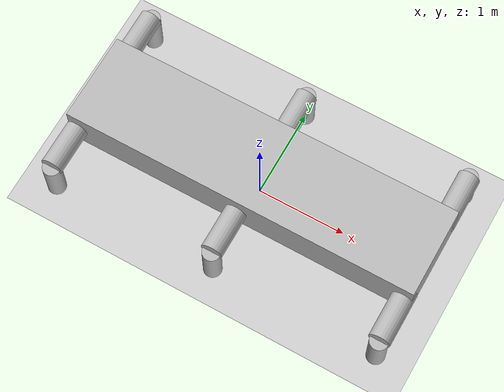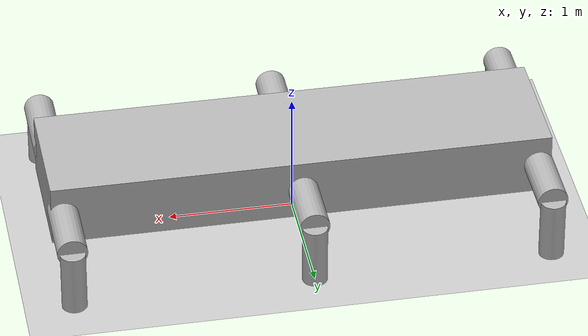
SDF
<!-- code written by: Yitong Tseo, David Burt, Zander Majercik -->
<?xml version="1.0"?>
<sdf version="1.4">
  <world name="six_legs_world">

    <!-- Ground Plane -->
    <include>
      <uri>model://ground_plane</uri>
    </include>

    <include>
      <uri>model://sun</uri>
    </include>

    <model name="buggy">
      <include>
          <static>false</static>
          <uri>model://Crab</uri>
      </include>

      <plugin name="move_legs" filename="libmove_legs.so"/>
    </model>
  </world>
</sdf>

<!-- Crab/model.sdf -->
<!-- This Model is designed to move "like a crab". Knee and hip joints rotate in the same direction.  -->
<?xml version='1.0'?>
<sdf version='1.4'>
  <model name="Crab">
    <static>false</static>
    <self_collide>1</self_collide>
    <!-- Defines the body Position, mass, collision and visuals. All masses are proportional to volume (i.e models have uniform density). The body model is a rectangular prism.-->
      <link name='body'>
        <pose>0 0 .5 0 0 0</pose>
        <inertial>
          <mass>20</mass>
        </inertial>
        <collision name='collision'>
          <pose frame=''>0 0 0 0 0 0</pose>
          <geometry>
            <box>
              <size>4 1 .5</size>
            </box>
          </geometry>
        </collision>
          <visual name='visual'>
          <pose>0 0 0 0 0 0</pose>
          <geometry>
            <box>
              <size>4 1 .5</size>
            </box>
          </geometry>
        </visual>
      </link>

      <!-- front left leg -->
      <include>
        <uri>model://CrabLeg</uri>
        <pose> 1.9 1 0 0 0 -1.57</pose>
        <name>fl_leg</name>
      </include>
      <joint name="body_to_fl_leg" type="revolute">
        <child>fl_leg::r_thigh_lift</child>
        <parent>body</parent>
        <pose frame=''>0 0 0.3 0 0 0</pose>
        <axis>
          <xyz>1 0 0</xyz>
          <limit>
          <lower>-0.523</lower>
          <upper>1.57</upper>
        </limit>
        </axis>
      </joint>

      <!-- front right leg -->
      <include>
        <uri>model://CrabLeg</uri>
        <pose> 1.9 -1 0 0 0 1.57</pose>
        <name>fr_leg</name>
      </include>
      <joint name="body_to_fr_leg" type="revolute">
        <child>fr_leg::r_thigh_lift</child>
        <parent>body</parent>
        <pose frame=''>0 0 0.3 0 0 0</pose>
        <axis>
          <xyz> 1 0 0</xyz>
          <limit>
          <lower>-0.523</lower>
          <upper>1.57</upper>
        </limit>
        </axis>
      </joint>

        <!-- middle left leg -->
      <include>
        <uri>model://CrabLeg</uri>
        <pose>0 1 0 0 0 -1.57</pose>
        <name>ml_leg</name>
      </include>
      <joint name="body_to_ml_leg" type="revolute">
        <child>ml_leg::r_thigh_lift</child>
        <parent>body</parent>
        <pose frame=''>0 0 0.3 0 0 0</pose>
        <axis>
          <xyz>1 0 0</xyz>
          <limit>
          <lower>-0.523</lower>
          <upper>1.57</upper>
        </limit>
        </axis>
      </joint>

      <!-- middle right leg -->
      <include>
        <uri>model://CrabLeg</uri>
        <pose>0 -1 0 0 0 1.57</pose>
        <name>mr_leg</name>
      </include>
      <joint name="body_to_mr_leg" type="revolute">
        <child>mr_leg::r_thigh_lift</child>
        <parent>body</parent>
        <pose frame=''>0 0 0.3 0 0 0</pose>
        <axis>
          <xyz>1 0 0</xyz>
          <limit>
          <lower>-0.523</lower>
          <upper>1.57</upper>
        </limit>
        </axis>
      </joint>

      <!-- rear left leg -->
      <include>
        <uri>model://CrabLeg</uri>
        <pose>-1.9 1 0 0 0 -1.57</pose>
        <name>rl_leg</name>
      </include>
      <joint name="body_to_rl_leg" type="revolute">
        <child>rl_leg::r_thigh_lift</child>
        <parent>body</parent>
        <pose frame=''>0 0 0.3 0 0 0</pose>
        <axis>
          <xyz>1 0 0</xyz>
          <limit>
          <lower>-0.523</lower>
          <upper>1.57</upper>
        </limit>
        </axis>
      </joint>

      <!-- rear right leg -->
      <include>
        <uri>model://CrabLeg</uri>
        <pose>-1.9 -1 0 0 0 1.57</pose>
        <name>rr_leg</name>
      </include>
      <joint name="body_to_rr_leg" type="revolute">
        <child>rr_leg::r_thigh_lift</child>
        <parent>body</parent>
        <pose frame=''>0 0 0.3 0 0 0</pose>
        <axis>
          <xyz>1 0 0</xyz>
          <limit>
          <lower>-0.523</lower>
          <upper>1.57</upper>
        </limit>
        </axis>
      </joint>

      <self_collide>1</self_collide>

    </model>
</sdf>

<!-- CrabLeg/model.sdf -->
<sdf version='1.6'>
  <model name='CrabLeg'>
    <link name='r_calf'>
      <pose frame=''>0 0 0.25 0 0 0</pose>
      <inertial>
        <mass>.3125</mass>
      </inertial>
      <gravity>1</gravity>
      <self_collide>1</self_collide>
      <visual name='r_calf_geom_visual'>
        <pose frame=''>0 0 0 0 0 0</pose>
        <geometry>
          <cylinder>
            <radius>0.1</radius>
            <length>0.5 </length>
          </cylinder>
        </geometry>
      </visual>
      <collision name='r_calf_geom'>
        <pose frame=''>0 0 0 0 0 0</pose>
        <geometry>
          <cylinder>
            <radius>0.1</radius>
            <length>0.5</length>
          </cylinder>
        </geometry>
      </collision>
    </link>

    <link name='r_thigh_lift'>
      <pose frame=''>0.3 0 0.5 0 1.57 0</pose>
      <inertial>
        <mass>.463</mass>
      </inertial>
      <gravity>1</gravity>
      <self_collide>1</self_collide>
      <visual name='r_thigh_lift_geom_visual'>
        <pose frame=''>0 0 0 0 0 0</pose>
        <geometry>
          <cylinder>
            <radius>0.12</radius>
            <length>0.6</length>
          </cylinder>
        </geometry>
      </visual>
      <collision name='r_thigh_lift_geom'>
        <pose frame=''>0 0 0 0 0 0</pose>
        <geometry>
          <cylinder>
            <radius>0.12</radius>
            <length>0.6</length>
          </cylinder>
        </geometry>
      </collision>
    </link>

    <joint name='r_calf_joint' type='revolute'>
      <parent>r_thigh_lift</parent>
      <child>r_calf</child>
      <pose frame=''>0 0 0.25 0 0 0</pose>
      <axis>
        <xyz>0 1 0</xyz>
        <use_parent_model_frame>1</use_parent_model_frame>
        <limit>
          <lower>-1.57</lower>
          <upper>0</upper>
        </limit>
      </axis>
    </joint>

    <static>0</static>
    <allow_auto_disable>1</allow_auto_disable>

  </model>
</sdf>
